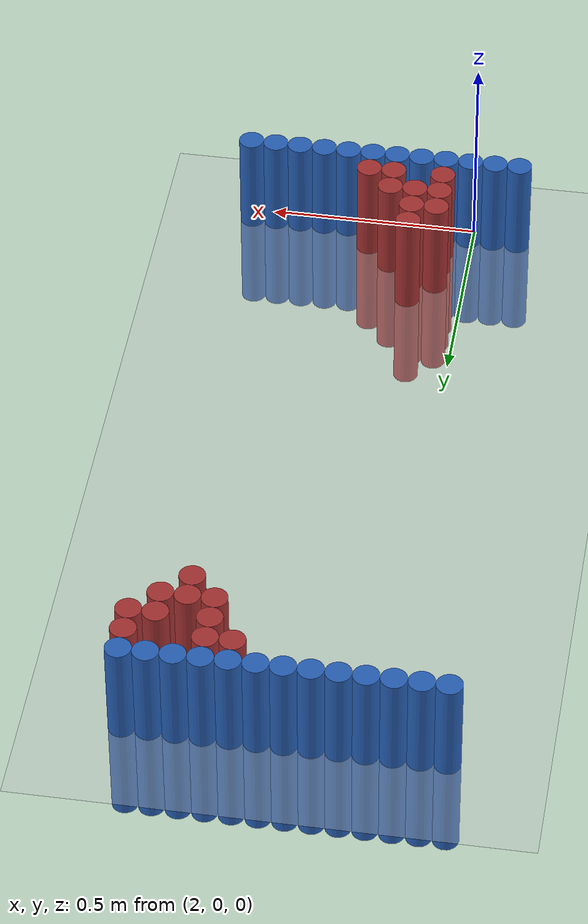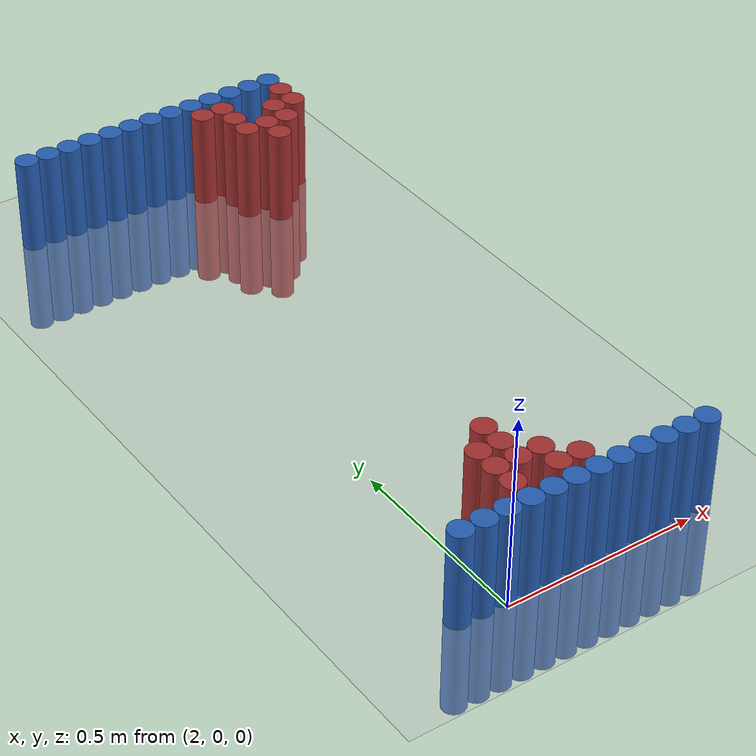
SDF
<sdf version="1.6">
 <world name="default">
  <model name="ground_plane">
   <static>1</static>
   <link name="link">
    <collision name="collision">
     <geometry><plane><normal>0 0 1</normal><size>100 100</size></plane></geometry>
     <surface><friction><ode><mu>100</mu><mu2>50</mu2></ode></friction></surface>
    </collision>
    <visual name="visual">
     <cast_shadows>0</cast_shadows>
     <geometry><plane><normal>0 0 1</normal><size>100 100</size></plane></geometry>
     <material>
      <script><uri>file://media/materials/scripts/gazebo.material</uri><name>Gazebo/Grey</name></script>
     </material>
    </visual>
   </link>
  </model>
  <model name="unit_cylinder_88">
   <static>1</static>
   <pose>1.830000 1.770000 0.000000 0.000000 0.000000 0.000000</pose>
   <link name="link">
    <inertial>
     <mass>1</mass>
     <inertia><ixx>0.145833</ixx><ixy>0</ixy><ixz>0</ixz><iyy>0.145833</iyy><iyz>0</iyz><izz>0.125</izz></inertia>
    </inertial>
    <collision name="collision">
     <geometry><cylinder><radius>0.030000</radius><length>0.5</length></cylinder></geometry>
    </collision>
    <visual name="visual">
     <geometry><cylinder><radius>0.030000</radius><length>0.5</length></cylinder></geometry>
     <material>
      <ambient>0.152000 0.379000 0.720000 1</ambient>
      <diffuse>0.152000 0.379000 0.720000 1</diffuse>
     </material>
     <material>
      <script><name>Gazebo/Grey</name><uri>file://media/materials/scripts/gazebo.material</uri></script>
     </material>
    </visual>
   </link>
  </model>
  <model name="unit_cylinder_89">
   <static>1</static>
   <pose>1.890000 0.030000 0.000000 0.000000 0.000000 0.000000</pose>
   <link name="link">
    <inertial>
     <mass>1</mass>
     <inertia><ixx>0.145833</ixx><ixy>0</ixy><ixz>0</ixz><iyy>0.145833</iyy><iyz>0</iyz><izz>0.125</izz></inertia>
    </inertial>
    <collision name="collision">
     <geometry><cylinder><radius>0.030000</radius><length>0.5</length></cylinder></geometry>
    </collision>
    <visual name="visual">
     <geometry><cylinder><radius>0.030000</radius><length>0.5</length></cylinder></geometry>
     <material>
      <ambient>0.152000 0.379000 0.720000 1</ambient>
      <diffuse>0.152000 0.379000 0.720000 1</diffuse>
     </material>
     <material>
      <script><name>Gazebo/Grey</name><uri>file://media/materials/scripts/gazebo.material</uri></script>
     </material>
    </visual>
   </link>
  </model>
  <model name="unit_cylinder_90">
   <static>1</static>
   <pose>1.890000 1.770000 0.000000 0.000000 0.000000 0.000000</pose>
   <link name="link">
    <inertial>
     <mass>1</mass>
     <inertia><ixx>0.145833</ixx><ixy>0</ixy><ixz>0</ixz><iyy>0.145833</iyy><iyz>0</iyz><izz>0.125</izz></inertia>
    </inertial>
    <collision name="collision">
     <geometry><cylinder><radius>0.030000</radius><length>0.5</length></cylinder></geometry>
    </collision>
    <visual name="visual">
     <geometry><cylinder><radius>0.030000</radius><length>0.5</length></cylinder></geometry>
     <material>
      <ambient>0.152000 0.379000 0.720000 1</ambient>
      <diffuse>0.152000 0.379000 0.720000 1</diffuse>
     </material>
     <material>
      <script><name>Gazebo/Grey</name><uri>file://media/materials/scripts/gazebo.material</uri></script>
     </material>
    </visual>
   </link>
  </model>
  <model name="unit_cylinder_91">
   <static>1</static>
   <pose>1.950000 0.030000 0.000000 0.000000 0.000000 0.000000</pose>
   <link name="link">
    <inertial>
     <mass>1</mass>
     <inertia><ixx>0.145833</ixx><ixy>0</ixy><ixz>0</ixz><iyy>0.145833</iyy><iyz>0</iyz><izz>0.125</izz></inertia>
    </inertial>
    <collision name="collision">
     <geometry><cylinder><radius>0.030000</radius><length>0.5</length></cylinder></geometry>
    </collision>
    <visual name="visual">
     <geometry><cylinder><radius>0.030000</radius><length>0.5</length></cylinder></geometry>
     <material>
      <ambient>0.152000 0.379000 0.720000 1</ambient>
      <diffuse>0.152000 0.379000 0.720000 1</diffuse>
     </material>
     <material>
      <script><name>Gazebo/Grey</name><uri>file://media/materials/scripts/gazebo.material</uri></script>
     </material>
    </visual>
   </link>
  </model>
  <model name="unit_cylinder_92">
   <static>1</static>
   <pose>1.950000 1.770000 0.000000 0.000000 0.000000 0.000000</pose>
   <link name="link">
    <inertial>
     <mass>1</mass>
     <inertia><ixx>0.145833</ixx><ixy>0</ixy><ixz>0</ixz><iyy>0.145833</iyy><iyz>0</iyz><izz>0.125</izz></inertia>
    </inertial>
    <collision name="collision">
     <geometry><cylinder><radius>0.030000</radius><length>0.5</length></cylinder></geometry>
    </collision>
    <visual name="visual">
     <geometry><cylinder><radius>0.030000</radius><length>0.5</length></cylinder></geometry>
     <material>
      <ambient>0.152000 0.379000 0.720000 1</ambient>
      <diffuse>0.152000 0.379000 0.720000 1</diffuse>
     </material>
     <material>
      <script><name>Gazebo/Grey</name><uri>file://media/materials/scripts/gazebo.material</uri></script>
     </material>
    </visual>
   </link>
  </model>
  <model name="unit_cylinder_93">
   <static>1</static>
   <pose>2.010000 0.030000 0.000000 0.000000 0.000000 0.000000</pose>
   <link name="link">
    <inertial>
     <mass>1</mass>
     <inertia><ixx>0.145833</ixx><ixy>0</ixy><ixz>0</ixz><iyy>0.145833</iyy><iyz>0</iyz><izz>0.125</izz></inertia>
    </inertial>
    <collision name="collision">
     <geometry><cylinder><radius>0.030000</radius><length>0.5</length></cylinder></geometry>
    </collision>
    <visual name="visual">
     <geometry><cylinder><radius>0.030000</radius><length>0.5</length></cylinder></geometry>
     <material>
      <ambient>0.152000 0.379000 0.720000 1</ambient>
      <diffuse>0.152000 0.379000 0.720000 1</diffuse>
     </material>
     <material>
      <script><name>Gazebo/Grey</name><uri>file://media/materials/scripts/gazebo.material</uri></script>
     </material>
    </visual>
   </link>
  </model>
  <model name="unit_cylinder_94">
   <static>1</static>
   <pose>2.010000 1.770000 0.000000 0.000000 0.000000 0.000000</pose>
   <link name="link">
    <inertial>
     <mass>1</mass>
     <inertia><ixx>0.145833</ixx><ixy>0</ixy><ixz>0</ixz><iyy>0.145833</iyy><iyz>0</iyz><izz>0.125</izz></inertia>
    </inertial>
    <collision name="collision">
     <geometry><cylinder><radius>0.030000</radius><length>0.5</length></cylinder></geometry>
    </collision>
    <visual name="visual">
     <geometry><cylinder><radius>0.030000</radius><length>0.5</length></cylinder></geometry>
     <material>
      <ambient>0.152000 0.379000 0.720000 1</ambient>
      <diffuse>0.152000 0.379000 0.720000 1</diffuse>
     </material>
     <material>
      <script><name>Gazebo/Grey</name><uri>file://media/materials/scripts/gazebo.material</uri></script>
     </material>
    </visual>
   </link>
  </model>
  <model name="unit_cylinder_95">
   <static>1</static>
   <pose>2.070000 1.770000 0.000000 0.000000 0.000000 0.000000</pose>
   <link name="link">
    <inertial>
     <mass>1</mass>
     <inertia><ixx>0.145833</ixx><ixy>0</ixy><ixz>0</ixz><iyy>0.145833</iyy><iyz>0</iyz><izz>0.125</izz></inertia>
    </inertial>
    <collision name="collision">
     <geometry><cylinder><radius>0.030000</radius><length>0.5</length></cylinder></geometry>
    </collision>
    <visual name="visual">
     <geometry><cylinder><radius>0.030000</radius><length>0.5</length></cylinder></geometry>
     <material>
      <ambient>0.152000 0.379000 0.720000 1</ambient>
      <diffuse>0.152000 0.379000 0.720000 1</diffuse>
     </material>
     <material>
      <script><name>Gazebo/Grey</name><uri>file://media/materials/scripts/gazebo.material</uri></script>
     </material>
    </visual>
   </link>
  </model>
  <model name="unit_cylinder_96">
   <static>1</static>
   <pose>2.130000 1.770000 0.000000 0.000000 0.000000 0.000000</pose>
   <link name="link">
    <inertial>
     <mass>1</mass>
     <inertia><ixx>0.145833</ixx><ixy>0</ixy><ixz>0</ixz><iyy>0.145833</iyy><iyz>0</iyz><izz>0.125</izz></inertia>
    </inertial>
    <collision name="collision">
     <geometry><cylinder><radius>0.030000</radius><length>0.5</length></cylinder></geometry>
    </collision>
    <visual name="visual">
     <geometry><cylinder><radius>0.030000</radius><length>0.5</length></cylinder></geometry>
     <material>
      <ambient>0.152000 0.379000 0.720000 1</ambient>
      <diffuse>0.152000 0.379000 0.720000 1</diffuse>
     </material>
     <material>
      <script><name>Gazebo/Grey</name><uri>file://media/materials/scripts/gazebo.material</uri></script>
     </material>
    </visual>
   </link>
  </model>
  <model name="unit_cylinder_97">
   <static>1</static>
   <pose>2.190000 1.770000 0.000000 0.000000 0.000000 0.000000</pose>
   <link name="link">
    <inertial>
     <mass>1</mass>
     <inertia><ixx>0.145833</ixx><ixy>0</ixy><ixz>0</ixz><iyy>0.145833</iyy><iyz>0</iyz><izz>0.125</izz></inertia>
    </inertial>
    <collision name="collision">
     <geometry><cylinder><radius>0.030000</radius><length>0.5</length></cylinder></geometry>
    </collision>
    <visual name="visual">
     <geometry><cylinder><radius>0.030000</radius><length>0.5</length></cylinder></geometry>
     <material>
      <ambient>0.152000 0.379000 0.720000 1</ambient>
      <diffuse>0.152000 0.379000 0.720000 1</diffuse>
     </material>
     <material>
      <script><name>Gazebo/Grey</name><uri>file://media/materials/scripts/gazebo.material</uri></script>
     </material>
    </visual>
   </link>
  </model>
  <model name="unit_cylinder_98">
   <static>1</static>
   <pose>2.250000 1.770000 0.000000 0.000000 0.000000 0.000000</pose>
   <link name="link">
    <inertial>
     <mass>1</mass>
     <inertia><ixx>0.145833</ixx><ixy>0</ixy><ixz>0</ixz><iyy>0.145833</iyy><iyz>0</iyz><izz>0.125</izz></inertia>
    </inertial>
    <collision name="collision">
     <geometry><cylinder><radius>0.030000</radius><length>0.5</length></cylinder></geometry>
    </collision>
    <visual name="visual">
     <geometry><cylinder><radius>0.030000</radius><length>0.5</length></cylinder></geometry>
     <material>
      <ambient>0.152000 0.379000 0.720000 1</ambient>
      <diffuse>0.152000 0.379000 0.720000 1</diffuse>
     </material>
     <material>
      <script><name>Gazebo/Grey</name><uri>file://media/materials/scripts/gazebo.material</uri></script>
     </material>
    </visual>
   </link>
  </model>
  <model name="unit_cylinder_99">
   <static>1</static>
   <pose>2.310000 1.770000 0.000000 0.000000 0.000000 0.000000</pose>
   <link name="link">
    <inertial>
     <mass>1</mass>
     <inertia><ixx>0.145833</ixx><ixy>0</ixy><ixz>0</ixz><iyy>0.145833</iyy><iyz>0</iyz><izz>0.125</izz></inertia>
    </inertial>
    <collision name="collision">
     <geometry><cylinder><radius>0.030000</radius><length>0.5</length></cylinder></geometry>
    </collision>
    <visual name="visual">
     <geometry><cylinder><radius>0.030000</radius><length>0.5</length></cylinder></geometry>
     <material>
      <ambient>0.152000 0.379000 0.720000 1</ambient>
      <diffuse>0.152000 0.379000 0.720000 1</diffuse>
     </material>
     <material>
      <script><name>Gazebo/Grey</name><uri>file://media/materials/scripts/gazebo.material</uri></script>
     </material>
    </visual>
   </link>
  </model>
  <model name="unit_cylinder_100">
   <static>1</static>
   <pose>2.370000 1.770000 0.000000 0.000000 0.000000 0.000000</pose>
   <link name="link">
    <inertial>
     <mass>1</mass>
     <inertia><ixx>0.145833</ixx><ixy>0</ixy><ixz>0</ixz><iyy>0.145833</iyy><iyz>0</iyz><izz>0.125</izz></inertia>
    </inertial>
    <collision name="collision">
     <geometry><cylinder><radius>0.030000</radius><length>0.5</length></cylinder></geometry>
    </collision>
    <visual name="visual">
     <geometry><cylinder><radius>0.030000</radius><length>0.5</length></cylinder></geometry>
     <material>
      <ambient>0.152000 0.379000 0.720000 1</ambient>
      <diffuse>0.152000 0.379000 0.720000 1</diffuse>
     </material>
     <material>
      <script><name>Gazebo/Grey</name><uri>file://media/materials/scripts/gazebo.material</uri></script>
     </material>
    </visual>
   </link>
  </model>
  <model name="unit_cylinder_101">
   <static>1</static>
   <pose>2.430000 1.770000 0.000000 0.000000 0.000000 0.000000</pose>
   <link name="link">
    <inertial>
     <mass>1</mass>
     <inertia><ixx>0.145833</ixx><ixy>0</ixy><ixz>0</ixz><iyy>0.145833</iyy><iyz>0</iyz><izz>0.125</izz></inertia>
    </inertial>
    <collision name="collision">
     <geometry><cylinder><radius>0.030000</radius><length>0.5</length></cylinder></geometry>
    </collision>
    <visual name="visual">
     <geometry><cylinder><radius>0.030000</radius><length>0.5</length></cylinder></geometry>
     <material>
      <ambient>0.152000 0.379000 0.720000 1</ambient>
      <diffuse>0.152000 0.379000 0.720000 1</diffuse>
     </material>
     <material>
      <script><name>Gazebo/Grey</name><uri>file://media/materials/scripts/gazebo.material</uri></script>
     </material>
    </visual>
   </link>
  </model>
  <model name="unit_cylinder_102">
   <static>1</static>
   <pose>2.490000 1.770000 0.000000 0.000000 0.000000 0.000000</pose>
   <link name="link">
    <inertial>
     <mass>1</mass>
     <inertia><ixx>0.145833</ixx><ixy>0</ixy><ixz>0</ixz><iyy>0.145833</iyy><iyz>0</iyz><izz>0.125</izz></inertia>
    </inertial>
    <collision name="collision">
     <geometry><cylinder><radius>0.030000</radius><length>0.5</length></cylinder></geometry>
    </collision>
    <visual name="visual">
     <geometry><cylinder><radius>0.030000</radius><length>0.5</length></cylinder></geometry>
     <material>
      <ambient>0.152000 0.379000 0.720000 1</ambient>
      <diffuse>0.152000 0.379000 0.720000 1</diffuse>
     </material>
     <material>
      <script><name>Gazebo/Grey</name><uri>file://media/materials/scripts/gazebo.material</uri></script>
     </material>
    </visual>
   </link>
  </model>
  <model name="unit_cylinder_103">
   <static>1</static>
   <pose>2.550000 1.770000 0.000000 0.000000 0.000000 0.000000</pose>
   <link name="link">
    <inertial>
     <mass>1</mass>
     <inertia><ixx>0.145833</ixx><ixy>0</ixy><ixz>0</ixz><iyy>0.145833</iyy><iyz>0</iyz><izz>0.125</izz></inertia>
    </inertial>
    <collision name="collision">
     <geometry><cylinder><radius>0.030000</radius><length>0.5</length></cylinder></geometry>
    </collision>
    <visual name="visual">
     <geometry><cylinder><radius>0.030000</radius><length>0.5</length></cylinder></geometry>
     <material>
      <ambient>0.152000 0.379000 0.720000 1</ambient>
      <diffuse>0.152000 0.379000 0.720000 1</diffuse>
     </material>
     <material>
      <script><name>Gazebo/Grey</name><uri>file://media/materials/scripts/gazebo.material</uri></script>
     </material>
    </visual>
   </link>
  </model>
  <model name="unit_cylinder_125">
   <static>1</static>
   <pose>2.310000 1.710000 0.000000 0.000000 0.000000 0.000000</pose>
   <link name="link">
    <inertial>
     <mass>1</mass>
     <inertia><ixx>0.145833</ixx><ixy>0</ixy><ixz>0</ixz><iyy>0.145833</iyy><iyz>0</iyz><izz>0.125</izz></inertia>
    </inertial>
    <collision name="collision">
     <geometry><cylinder><radius>0.030000</radius><length>0.5</length></cylinder></geometry>
    </collision>
    <visual name="visual">
     <geometry><cylinder><radius>0.030000</radius><length>0.5</length></cylinder></geometry>
     <material>
      <ambient>0.648000 0.192000 0.192000 1</ambient>
      <diffuse>0.648000 0.192000 0.192000 1</diffuse>
     </material>
     <material>
      <script><name>Gazebo/Grey</name><uri>file://media/materials/scripts/gazebo.material</uri></script>
     </material>
    </visual>
   </link>
  </model>
  <model name="unit_cylinder_126">
   <static>1</static>
   <pose>2.370000 1.710000 0.000000 0.000000 0.000000 0.000000</pose>
   <link name="link">
    <inertial>
     <mass>1</mass>
     <inertia><ixx>0.145833</ixx><ixy>0</ixy><ixz>0</ixz><iyy>0.145833</iyy><iyz>0</iyz><izz>0.125</izz></inertia>
    </inertial>
    <collision name="collision">
     <geometry><cylinder><radius>0.030000</radius><length>0.5</length></cylinder></geometry>
    </collision>
    <visual name="visual">
     <geometry><cylinder><radius>0.030000</radius><length>0.5</length></cylinder></geometry>
     <material>
      <ambient>0.648000 0.192000 0.192000 1</ambient>
      <diffuse>0.648000 0.192000 0.192000 1</diffuse>
     </material>
     <material>
      <script><name>Gazebo/Grey</name><uri>file://media/materials/scripts/gazebo.material</uri></script>
     </material>
    </visual>
   </link>
  </model>
  <model name="unit_cylinder_127">
   <static>1</static>
   <pose>2.550000 1.710000 0.000000 0.000000 0.000000 0.000000</pose>
   <link name="link">
    <inertial>
     <mass>1</mass>
     <inertia><ixx>0.145833</ixx><ixy>0</ixy><ixz>0</ixz><iyy>0.145833</iyy><iyz>0</iyz><izz>0.125</izz></inertia>
    </inertial>
    <collision name="collision">
     <geometry><cylinder><radius>0.030000</radius><length>0.5</length></cylinder></geometry>
    </collision>
    <visual name="visual">
     <geometry><cylinder><radius>0.030000</radius><length>0.5</length></cylinder></geometry>
     <material>
      <ambient>0.648000 0.192000 0.192000 1</ambient>
      <diffuse>0.648000 0.192000 0.192000 1</diffuse>
     </material>
     <material>
      <script><name>Gazebo/Grey</name><uri>file://media/materials/scripts/gazebo.material</uri></script>
     </material>
    </visual>
   </link>
  </model>
  <model name="unit_cylinder_136">
   <static>1</static>
   <pose>2.370000 1.650000 0.000000 0.000000 0.000000 0.000000</pose>
   <link name="link">
    <inertial>
     <mass>1</mass>
     <inertia><ixx>0.145833</ixx><ixy>0</ixy><ixz>0</ixz><iyy>0.145833</iyy><iyz>0</iyz><izz>0.125</izz></inertia>
    </inertial>
    <collision name="collision">
     <geometry><cylinder><radius>0.030000</radius><length>0.5</length></cylinder></geometry>
    </collision>
    <visual name="visual">
     <geometry><cylinder><radius>0.030000</radius><length>0.5</length></cylinder></geometry>
     <material>
      <ambient>0.648000 0.192000 0.192000 1</ambient>
      <diffuse>0.648000 0.192000 0.192000 1</diffuse>
     </material>
     <material>
      <script><name>Gazebo/Grey</name><uri>file://media/materials/scripts/gazebo.material</uri></script>
     </material>
    </visual>
   </link>
  </model>
  <model name="unit_cylinder_137">
   <static>1</static>
   <pose>2.490000 1.650000 0.000000 0.000000 0.000000 0.000000</pose>
   <link name="link">
    <inertial>
     <mass>1</mass>
     <inertia><ixx>0.145833</ixx><ixy>0</ixy><ixz>0</ixz><iyy>0.145833</iyy><iyz>0</iyz><izz>0.125</izz></inertia>
    </inertial>
    <collision name="collision">
     <geometry><cylinder><radius>0.030000</radius><length>0.5</length></cylinder></geometry>
    </collision>
    <visual name="visual">
     <geometry><cylinder><radius>0.030000</radius><length>0.5</length></cylinder></geometry>
     <material>
      <ambient>0.648000 0.192000 0.192000 1</ambient>
      <diffuse>0.648000 0.192000 0.192000 1</diffuse>
     </material>
     <material>
      <script><name>Gazebo/Grey</name><uri>file://media/materials/scripts/gazebo.material</uri></script>
     </material>
    </visual>
   </link>
  </model>
  <model name="unit_cylinder_138">
   <static>1</static>
   <pose>2.550000 1.650000 0.000000 0.000000 0.000000 0.000000</pose>
   <link name="link">
    <inertial>
     <mass>1</mass>
     <inertia><ixx>0.145833</ixx><ixy>0</ixy><ixz>0</ixz><iyy>0.145833</iyy><iyz>0</iyz><izz>0.125</izz></inertia>
    </inertial>
    <collision name="collision">
     <geometry><cylinder><radius>0.030000</radius><length>0.5</length></cylinder></geometry>
    </collision>
    <visual name="visual">
     <geometry><cylinder><radius>0.030000</radius><length>0.5</length></cylinder></geometry>
     <material>
      <ambient>0.648000 0.192000 0.192000 1</ambient>
      <diffuse>0.648000 0.192000 0.192000 1</diffuse>
     </material>
     <material>
      <script><name>Gazebo/Grey</name><uri>file://media/materials/scripts/gazebo.material</uri></script>
     </material>
    </visual>
   </link>
  </model>
  <model name="unit_cylinder_139">
   <static>1</static>
   <pose>2.370000 1.590000 0.000000 0.000000 0.000000 0.000000</pose>
   <link name="link">
    <inertial>
     <mass>1</mass>
     <inertia><ixx>0.145833</ixx><ixy>0</ixy><ixz>0</ixz><iyy>0.145833</iyy><iyz>0</iyz><izz>0.125</izz></inertia>
    </inertial>
    <collision name="collision">
     <geometry><cylinder><radius>0.030000</radius><length>0.5</length></cylinder></geometry>
    </collision>
    <visual name="visual">
     <geometry><cylinder><radius>0.030000</radius><length>0.5</length></cylinder></geometry>
     <material>
      <ambient>0.648000 0.192000 0.192000 1</ambient>
      <diffuse>0.648000 0.192000 0.192000 1</diffuse>
     </material>
     <material>
      <script><name>Gazebo/Grey</name><uri>file://media/materials/scripts/gazebo.material</uri></script>
     </material>
    </visual>
   </link>
  </model>
  <model name="unit_cylinder_140">
   <static>1</static>
   <pose>2.430000 1.590000 0.000000 0.000000 0.000000 0.000000</pose>
   <link name="link">
    <inertial>
     <mass>1</mass>
     <inertia><ixx>0.145833</ixx><ixy>0</ixy><ixz>0</ixz><iyy>0.145833</iyy><iyz>0</iyz><izz>0.125</izz></inertia>
    </inertial>
    <collision name="collision">
     <geometry><cylinder><radius>0.030000</radius><length>0.5</length></cylinder></geometry>
    </collision>
    <visual name="visual">
     <geometry><cylinder><radius>0.030000</radius><length>0.5</length></cylinder></geometry>
     <material>
      <ambient>0.648000 0.192000 0.192000 1</ambient>
      <diffuse>0.648000 0.192000 0.192000 1</diffuse>
     </material>
     <material>
      <script><name>Gazebo/Grey</name><uri>file://media/materials/scripts/gazebo.material</uri></script>
     </material>
    </visual>
   </link>
  </model>
  <model name="unit_cylinder_141">
   <static>1</static>
   <pose>2.490000 1.590000 0.000000 0.000000 0.000000 0.000000</pose>
   <link name="link">
    <inertial>
     <mass>1</mass>
     <inertia><ixx>0.145833</ixx><ixy>0</ixy><ixz>0</ixz><iyy>0.145833</iyy><iyz>0</iyz><izz>0.125</izz></inertia>
    </inertial>
    <collision name="collision">
     <geometry><cylinder><radius>0.030000</radius><length>0.5</length></cylinder></geometry>
    </collision>
    <visual name="visual">
     <geometry><cylinder><radius>0.030000</radius><length>0.5</length></cylinder></geometry>
     <material>
      <ambient>0.648000 0.192000 0.192000 1</ambient>
      <diffuse>0.648000 0.192000 0.192000 1</diffuse>
     </material>
     <material>
      <script><name>Gazebo/Grey</name><uri>file://media/materials/scripts/gazebo.material</uri></script>
     </material>
    </visual>
   </link>
  </model>
  <model name="unit_cylinder_142">
   <static>1</static>
   <pose>2.430000 1.530000 0.000000 0.000000 0.000000 0.000000</pose>
   <link name="link">
    <inertial>
     <mass>1</mass>
     <inertia><ixx>0.145833</ixx><ixy>0</ixy><ixz>0</ixz><iyy>0.145833</iyy><iyz>0</iyz><izz>0.125</izz></inertia>
    </inertial>
    <collision name="collision">
     <geometry><cylinder><radius>0.030000</radius><length>0.5</length></cylinder></geometry>
    </collision>
    <visual name="visual">
     <geometry><cylinder><radius>0.030000</radius><length>0.5</length></cylinder></geometry>
     <material>
      <ambient>0.648000 0.192000 0.192000 1</ambient>
      <diffuse>0.648000 0.192000 0.192000 1</diffuse>
     </material>
     <material>
      <script><name>Gazebo/Grey</name><uri>file://media/materials/scripts/gazebo.material</uri></script>
     </material>
    </visual>
   </link>
  </model>
  <model name="unit_cylinder_161">
   <static>1</static>
   <pose>2.130000 0.270000 0.000000 0.000000 0.000000 0.000000</pose>
   <link name="link">
    <inertial>
     <mass>1</mass>
     <inertia><ixx>0.145833</ixx><ixy>0</ixy><ixz>0</ixz><iyy>0.145833</iyy><iyz>0</iyz><izz>0.125</izz></inertia>
    </inertial>
    <collision name="collision">
     <geometry><cylinder><radius>0.030000</radius><length>0.5</length></cylinder></geometry>
    </collision>
    <visual name="visual">
     <geometry><cylinder><radius>0.030000</radius><length>0.5</length></cylinder></geometry>
     <material>
      <ambient>0.648000 0.192000 0.192000 1</ambient>
      <diffuse>0.648000 0.192000 0.192000 1</diffuse>
     </material>
     <material>
      <script><name>Gazebo/Grey</name><uri>file://media/materials/scripts/gazebo.material</uri></script>
     </material>
    </visual>
   </link>
  </model>
  <model name="unit_cylinder_164">
   <static>1</static>
   <pose>2.070000 0.210000 0.000000 0.000000 0.000000 0.000000</pose>
   <link name="link">
    <inertial>
     <mass>1</mass>
     <inertia><ixx>0.145833</ixx><ixy>0</ixy><ixz>0</ixz><iyy>0.145833</iyy><iyz>0</iyz><izz>0.125</izz></inertia>
    </inertial>
    <collision name="collision">
     <geometry><cylinder><radius>0.030000</radius><length>0.5</length></cylinder></geometry>
    </collision>
    <visual name="visual">
     <geometry><cylinder><radius>0.030000</radius><length>0.5</length></cylinder></geometry>
     <material>
      <ambient>0.648000 0.192000 0.192000 1</ambient>
      <diffuse>0.648000 0.192000 0.192000 1</diffuse>
     </material>
     <material>
      <script><name>Gazebo/Grey</name><uri>file://media/materials/scripts/gazebo.material</uri></script>
     </material>
    </visual>
   </link>
  </model>
  <model name="unit_cylinder_165">
   <static>1</static>
   <pose>2.130000 0.210000 0.000000 0.000000 0.000000 0.000000</pose>
   <link name="link">
    <inertial>
     <mass>1</mass>
     <inertia><ixx>0.145833</ixx><ixy>0</ixy><ixz>0</ixz><iyy>0.145833</iyy><iyz>0</iyz><izz>0.125</izz></inertia>
    </inertial>
    <collision name="collision">
     <geometry><cylinder><radius>0.030000</radius><length>0.5</length></cylinder></geometry>
    </collision>
    <visual name="visual">
     <geometry><cylinder><radius>0.030000</radius><length>0.5</length></cylinder></geometry>
     <material>
      <ambient>0.648000 0.192000 0.192000 1</ambient>
      <diffuse>0.648000 0.192000 0.192000 1</diffuse>
     </material>
     <material>
      <script><name>Gazebo/Grey</name><uri>file://media/materials/scripts/gazebo.material</uri></script>
     </material>
    </visual>
   </link>
  </model>
  <model name="unit_cylinder_166">
   <static>1</static>
   <pose>2.070000 0.150000 0.000000 0.000000 0.000000 0.000000</pose>
   <link name="link">
    <inertial>
     <mass>1</mass>
     <inertia><ixx>0.145833</ixx><ixy>0</ixy><ixz>0</ixz><iyy>0.145833</iyy><iyz>0</iyz><izz>0.125</izz></inertia>
    </inertial>
    <collision name="collision">
     <geometry><cylinder><radius>0.030000</radius><length>0.5</length></cylinder></geometry>
    </collision>
    <visual name="visual">
     <geometry><cylinder><radius>0.030000</radius><length>0.5</length></cylinder></geometry>
     <material>
      <ambient>0.648000 0.192000 0.192000 1</ambient>
      <diffuse>0.648000 0.192000 0.192000 1</diffuse>
     </material>
     <material>
      <script><name>Gazebo/Grey</name><uri>file://media/materials/scripts/gazebo.material</uri></script>
     </material>
    </visual>
   </link>
  </model>
  <model name="unit_cylinder_167">
   <static>1</static>
   <pose>2.130000 0.150000 0.000000 0.000000 0.000000 0.000000</pose>
   <link name="link">
    <inertial>
     <mass>1</mass>
     <inertia><ixx>0.145833</ixx><ixy>0</ixy><ixz>0</ixz><iyy>0.145833</iyy><iyz>0</iyz><izz>0.125</izz></inertia>
    </inertial>
    <collision name="collision">
     <geometry><cylinder><radius>0.030000</radius><length>0.5</length></cylinder></geometry>
    </collision>
    <visual name="visual">
     <geometry><cylinder><radius>0.030000</radius><length>0.5</length></cylinder></geometry>
     <material>
      <ambient>0.648000 0.192000 0.192000 1</ambient>
      <diffuse>0.648000 0.192000 0.192000 1</diffuse>
     </material>
     <material>
      <script><name>Gazebo/Grey</name><uri>file://media/materials/scripts/gazebo.material</uri></script>
     </material>
    </visual>
   </link>
  </model>
  <model name="unit_cylinder_168">
   <static>1</static>
   <pose>2.190000 0.150000 0.000000 0.000000 0.000000 0.000000</pose>
   <link name="link">
    <inertial>
     <mass>1</mass>
     <inertia><ixx>0.145833</ixx><ixy>0</ixy><ixz>0</ixz><iyy>0.145833</iyy><iyz>0</iyz><izz>0.125</izz></inertia>
    </inertial>
    <collision name="collision">
     <geometry><cylinder><radius>0.030000</radius><length>0.5</length></cylinder></geometry>
    </collision>
    <visual name="visual">
     <geometry><cylinder><radius>0.030000</radius><length>0.5</length></cylinder></geometry>
     <material>
      <ambient>0.648000 0.192000 0.192000 1</ambient>
      <diffuse>0.648000 0.192000 0.192000 1</diffuse>
     </material>
     <material>
      <script><name>Gazebo/Grey</name><uri>file://media/materials/scripts/gazebo.material</uri></script>
     </material>
    </visual>
   </link>
  </model>
  <model name="unit_cylinder_171">
   <static>1</static>
   <pose>2.070000 0.090000 0.000000 0.000000 0.000000 0.000000</pose>
   <link name="link">
    <inertial>
     <mass>1</mass>
     <inertia><ixx>0.145833</ixx><ixy>0</ixy><ixz>0</ixz><iyy>0.145833</iyy><iyz>0</iyz><izz>0.125</izz></inertia>
    </inertial>
    <collision name="collision">
     <geometry><cylinder><radius>0.030000</radius><length>0.5</length></cylinder></geometry>
    </collision>
    <visual name="visual">
     <geometry><cylinder><radius>0.030000</radius><length>0.5</length></cylinder></geometry>
     <material>
      <ambient>0.648000 0.192000 0.192000 1</ambient>
      <diffuse>0.648000 0.192000 0.192000 1</diffuse>
     </material>
     <material>
      <script><name>Gazebo/Grey</name><uri>file://media/materials/scripts/gazebo.material</uri></script>
     </material>
    </visual>
   </link>
  </model>
  <model name="unit_cylinder_172">
   <static>1</static>
   <pose>2.190000 0.090000 0.000000 0.000000 0.000000 0.000000</pose>
   <link name="link">
    <inertial>
     <mass>1</mass>
     <inertia><ixx>0.145833</ixx><ixy>0</ixy><ixz>0</ixz><iyy>0.145833</iyy><iyz>0</iyz><izz>0.125</izz></inertia>
    </inertial>
    <collision name="collision">
     <geometry><cylinder><radius>0.030000</radius><length>0.5</length></cylinder></geometry>
    </collision>
    <visual name="visual">
     <geometry><cylinder><radius>0.030000</radius><length>0.5</length></cylinder></geometry>
     <material>
      <ambient>0.648000 0.192000 0.192000 1</ambient>
      <diffuse>0.648000 0.192000 0.192000 1</diffuse>
     </material>
     <material>
      <script><name>Gazebo/Grey</name><uri>file://media/materials/scripts/gazebo.material</uri></script>
     </material>
    </visual>
   </link>
  </model>
  <model name="unit_cylinder_173">
   <static>1</static>
   <pose>2.250000 0.090000 0.000000 0.000000 0.000000 0.000000</pose>
   <link name="link">
    <inertial>
     <mass>1</mass>
     <inertia><ixx>0.145833</ixx><ixy>0</ixy><ixz>0</ixz><iyy>0.145833</iyy><iyz>0</iyz><izz>0.125</izz></inertia>
    </inertial>
    <collision name="collision">
     <geometry><cylinder><radius>0.030000</radius><length>0.5</length></cylinder></geometry>
    </collision>
    <visual name="visual">
     <geometry><cylinder><radius>0.030000</radius><length>0.5</length></cylinder></geometry>
     <material>
      <ambient>0.648000 0.192000 0.192000 1</ambient>
      <diffuse>0.648000 0.192000 0.192000 1</diffuse>
     </material>
     <material>
      <script><name>Gazebo/Grey</name><uri>file://media/materials/scripts/gazebo.material</uri></script>
     </material>
    </visual>
   </link>
  </model>
  <model name="unit_cylinder_190">
   <static>1</static>
   <pose>2.070000 0.030000 0.000000 0.000000 0.000000 0.000000</pose>
   <link name="link">
    <inertial>
     <mass>1</mass>
     <inertia><ixx>0.145833</ixx><ixy>0</ixy><ixz>0</ixz><iyy>0.145833</iyy><iyz>0</iyz><izz>0.125</izz></inertia>
    </inertial>
    <collision name="collision">
     <geometry><cylinder><radius>0.030000</radius><length>0.5</length></cylinder></geometry>
    </collision>
    <visual name="visual">
     <geometry><cylinder><radius>0.030000</radius><length>0.5</length></cylinder></geometry>
     <material>
      <ambient>0.152000 0.379000 0.720000 1</ambient>
      <diffuse>0.152000 0.379000 0.720000 1</diffuse>
     </material>
     <material>
      <script><name>Gazebo/Grey</name><uri>file://media/materials/scripts/gazebo.material</uri></script>
     </material>
    </visual>
   </link>
  </model>
  <model name="unit_cylinder_191">
   <static>1</static>
   <pose>2.130000 0.030000 0.000000 0.000000 0.000000 0.000000</pose>
   <link name="link">
    <inertial>
     <mass>1</mass>
     <inertia><ixx>0.145833</ixx><ixy>0</ixy><ixz>0</ixz><iyy>0.145833</iyy><iyz>0</iyz><izz>0.125</izz></inertia>
    </inertial>
    <collision name="collision">
     <geometry><cylinder><radius>0.030000</radius><length>0.5</length></cylinder></geometry>
    </collision>
    <visual name="visual">
     <geometry><cylinder><radius>0.030000</radius><length>0.5</length></cylinder></geometry>
     <material>
      <ambient>0.152000 0.379000 0.720000 1</ambient>
      <diffuse>0.152000 0.379000 0.720000 1</diffuse>
     </material>
     <material>
      <script><name>Gazebo/Grey</name><uri>file://media/materials/scripts/gazebo.material</uri></script>
     </material>
    </visual>
   </link>
  </model>
  <model name="unit_cylinder_192">
   <static>1</static>
   <pose>2.190000 0.030000 0.000000 0.000000 0.000000 0.000000</pose>
   <link name="link">
    <inertial>
     <mass>1</mass>
     <inertia><ixx>0.145833</ixx><ixy>0</ixy><ixz>0</ixz><iyy>0.145833</iyy><iyz>0</iyz><izz>0.125</izz></inertia>
    </inertial>
    <collision name="collision">
     <geometry><cylinder><radius>0.030000</radius><length>0.5</length></cylinder></geometry>
    </collision>
    <visual name="visual">
     <geometry><cylinder><radius>0.030000</radius><length>0.5</length></cylinder></geometry>
     <material>
      <ambient>0.152000 0.379000 0.720000 1</ambient>
      <diffuse>0.152000 0.379000 0.720000 1</diffuse>
     </material>
     <material>
      <script><name>Gazebo/Grey</name><uri>file://media/materials/scripts/gazebo.material</uri></script>
     </material>
    </visual>
   </link>
  </model>
  <model name="unit_cylinder_193">
   <static>1</static>
   <pose>2.250000 0.030000 0.000000 0.000000 0.000000 0.000000</pose>
   <link name="link">
    <inertial>
     <mass>1</mass>
     <inertia><ixx>0.145833</ixx><ixy>0</ixy><ixz>0</ixz><iyy>0.145833</iyy><iyz>0</iyz><izz>0.125</izz></inertia>
    </inertial>
    <collision name="collision">
     <geometry><cylinder><radius>0.030000</radius><length>0.5</length></cylinder></geometry>
    </collision>
    <visual name="visual">
     <geometry><cylinder><radius>0.030000</radius><length>0.5</length></cylinder></geometry>
     <material>
      <ambient>0.152000 0.379000 0.720000 1</ambient>
      <diffuse>0.152000 0.379000 0.720000 1</diffuse>
     </material>
     <material>
      <script><name>Gazebo/Grey</name><uri>file://media/materials/scripts/gazebo.material</uri></script>
     </material>
    </visual>
   </link>
  </model>
  <model name="unit_cylinder_194">
   <static>1</static>
   <pose>2.310000 0.030000 0.000000 0.000000 0.000000 0.000000</pose>
   <link name="link">
    <inertial>
     <mass>1</mass>
     <inertia><ixx>0.145833</ixx><ixy>0</ixy><ixz>0</ixz><iyy>0.145833</iyy><iyz>0</iyz><izz>0.125</izz></inertia>
    </inertial>
    <collision name="collision">
     <geometry><cylinder><radius>0.030000</radius><length>0.5</length></cylinder></geometry>
    </collision>
    <visual name="visual">
     <geometry><cylinder><radius>0.030000</radius><length>0.5</length></cylinder></geometry>
     <material>
      <ambient>0.152000 0.379000 0.720000 1</ambient>
      <diffuse>0.152000 0.379000 0.720000 1</diffuse>
     </material>
     <material>
      <script><name>Gazebo/Grey</name><uri>file://media/materials/scripts/gazebo.material</uri></script>
     </material>
    </visual>
   </link>
  </model>
  <model name="unit_cylinder_195">
   <static>1</static>
   <pose>2.370000 0.030000 0.000000 0.000000 0.000000 0.000000</pose>
   <link name="link">
    <inertial>
     <mass>1</mass>
     <inertia><ixx>0.145833</ixx><ixy>0</ixy><ixz>0</ixz><iyy>0.145833</iyy><iyz>0</iyz><izz>0.125</izz></inertia>
    </inertial>
    <collision name="collision">
     <geometry><cylinder><radius>0.030000</radius><length>0.5</length></cylinder></geometry>
    </collision>
    <visual name="visual">
     <geometry><cylinder><radius>0.030000</radius><length>0.5</length></cylinder></geometry>
     <material>
      <ambient>0.152000 0.379000 0.720000 1</ambient>
      <diffuse>0.152000 0.379000 0.720000 1</diffuse>
     </material>
     <material>
      <script><name>Gazebo/Grey</name><uri>file://media/materials/scripts/gazebo.material</uri></script>
     </material>
    </visual>
   </link>
  </model>
  <model name="unit_cylinder_196">
   <static>1</static>
   <pose>2.430000 0.030000 0.000000 0.000000 0.000000 0.000000</pose>
   <link name="link">
    <inertial>
     <mass>1</mass>
     <inertia><ixx>0.145833</ixx><ixy>0</ixy><ixz>0</ixz><iyy>0.145833</iyy><iyz>0</iyz><izz>0.125</izz></inertia>
    </inertial>
    <collision name="collision">
     <geometry><cylinder><radius>0.030000</radius><length>0.5</length></cylinder></geometry>
    </collision>
    <visual name="visual">
     <geometry><cylinder><radius>0.030000</radius><length>0.5</length></cylinder></geometry>
     <material>
      <ambient>0.152000 0.379000 0.720000 1</ambient>
      <diffuse>0.152000 0.379000 0.720000 1</diffuse>
     </material>
     <material>
      <script><name>Gazebo/Grey</name><uri>file://media/materials/scripts/gazebo.material</uri></script>
     </material>
    </visual>
   </link>
  </model>
  <model name="unit_cylinder_197">
   <static>1</static>
   <pose>2.490000 0.030000 0.000000 0.000000 0.000000 0.000000</pose>
   <link name="link">
    <inertial>
     <mass>1</mass>
     <inertia><ixx>0.145833</ixx><ixy>0</ixy><ixz>0</ixz><iyy>0.145833</iyy><iyz>0</iyz><izz>0.125</izz></inertia>
    </inertial>
    <collision name="collision">
     <geometry><cylinder><radius>0.030000</radius><length>0.5</length></cylinder></geometry>
    </collision>
    <visual name="visual">
     <geometry><cylinder><radius>0.030000</radius><length>0.5</length></cylinder></geometry>
     <material>
      <ambient>0.152000 0.379000 0.720000 1</ambient>
      <diffuse>0.152000 0.379000 0.720000 1</diffuse>
     </material>
     <material>
      <script><name>Gazebo/Grey</name><uri>file://media/materials/scripts/gazebo.material</uri></script>
     </material>
    </visual>
   </link>
  </model>
  <model name="unit_cylinder_198">
   <static>1</static>
   <pose>2.550000 0.030000 0.000000 0.000000 0.000000 0.000000</pose>
   <link name="link">
    <inertial>
     <mass>1</mass>
     <inertia><ixx>0.145833</ixx><ixy>0</ixy><ixz>0</ixz><iyy>0.145833</iyy><iyz>0</iyz><izz>0.125</izz></inertia>
    </inertial>
    <collision name="collision">
     <geometry><cylinder><radius>0.030000</radius><length>0.5</length></cylinder></geometry>
    </collision>
    <visual name="visual">
     <geometry><cylinder><radius>0.030000</radius><length>0.5</length></cylinder></geometry>
     <material>
      <ambient>0.152000 0.379000 0.720000 1</ambient>
      <diffuse>0.152000 0.379000 0.720000 1</diffuse>
     </material>
     <material>
      <script><name>Gazebo/Grey</name><uri>file://media/materials/scripts/gazebo.material</uri></script>
     </material>
    </visual>
   </link>
  </model>
 </world>
</sdf>
